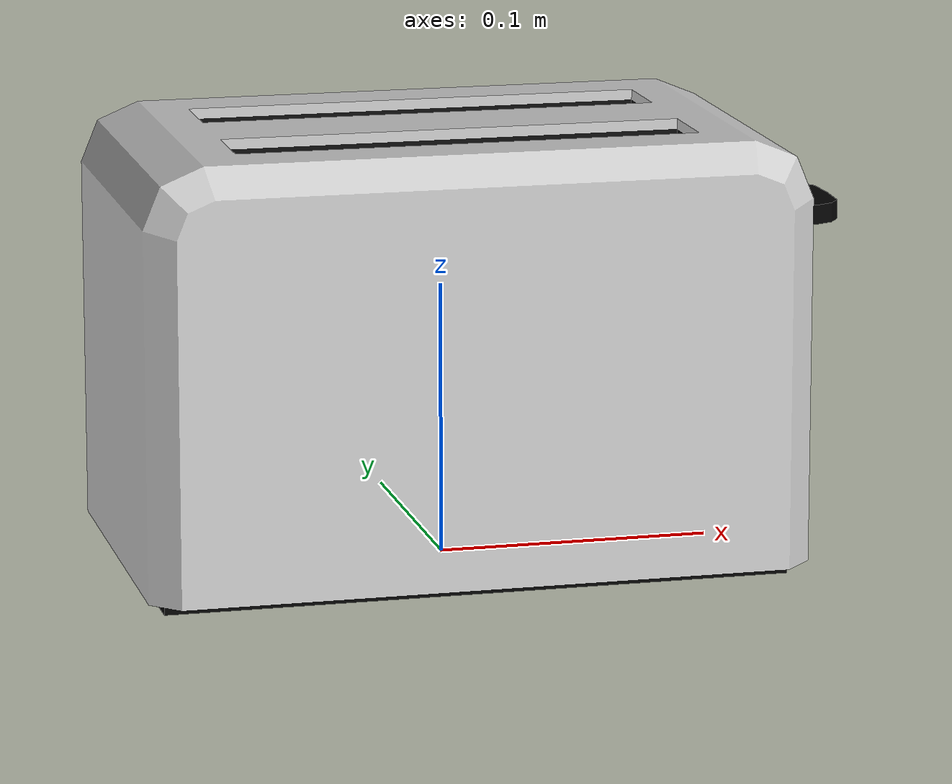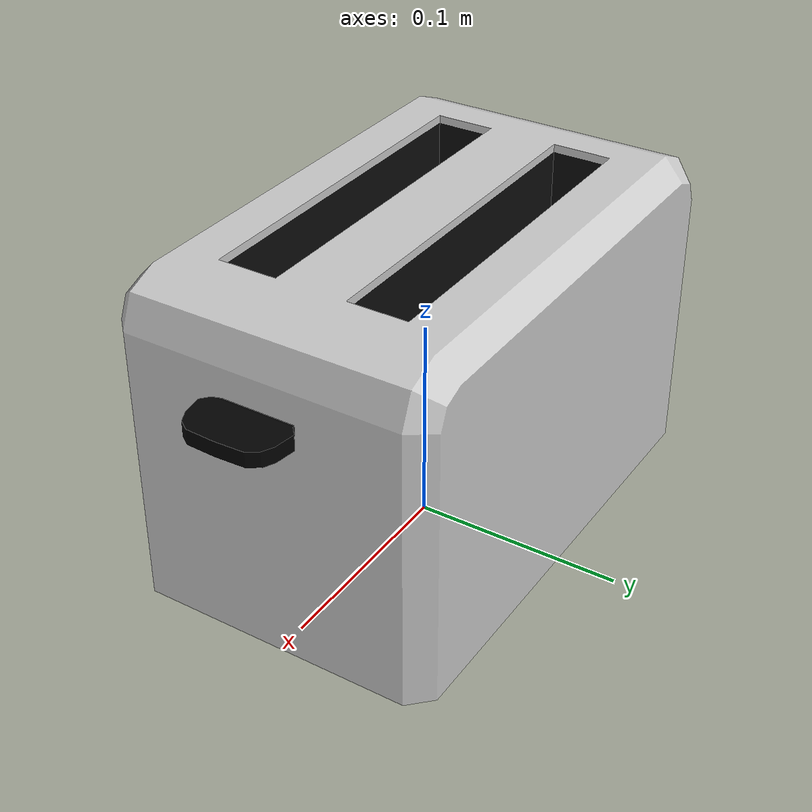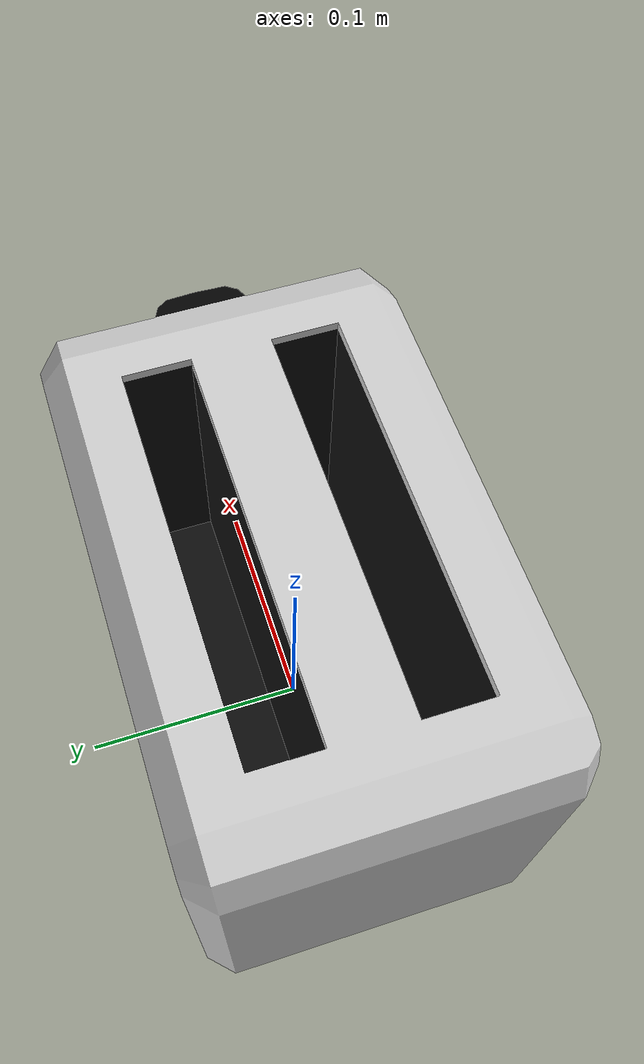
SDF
<?xml version='1.0'?>
<sdf version="1.4">
	<model name="toaster">
		<static>1</static>
		<link name="link">
			<visual name="mesh">
				<geometry>
					<mesh>
						<uri>model://meshes/toaster.dae</uri>
					</mesh>
				</geometry>
			</visual>
			<collision name="collider">
				<pose>0 0 0.08 0 0 0</pose>
				<geometry>
					<box>
						<size>0.26 0.15 0.16</size>
					</box>
				</geometry>
			</collision>
		</link>
	</model>
</sdf>
